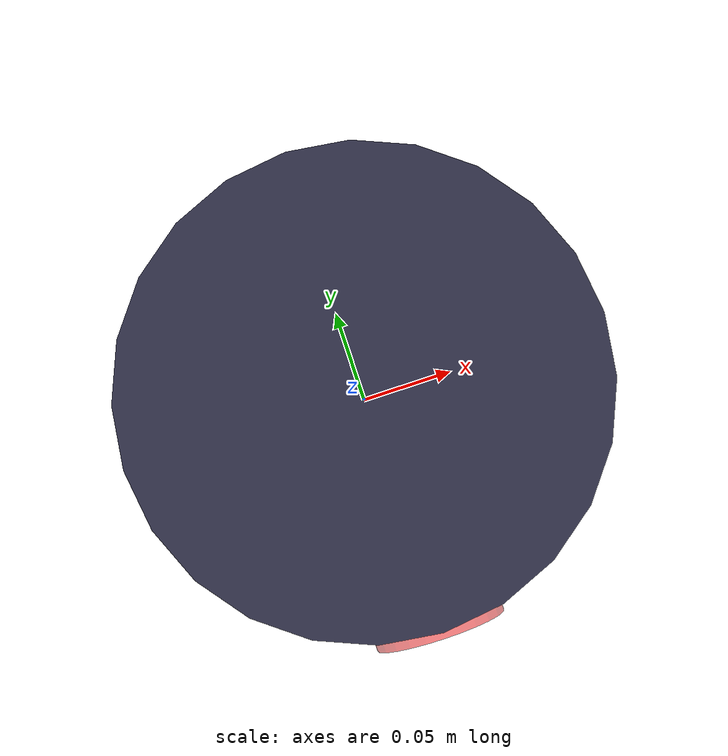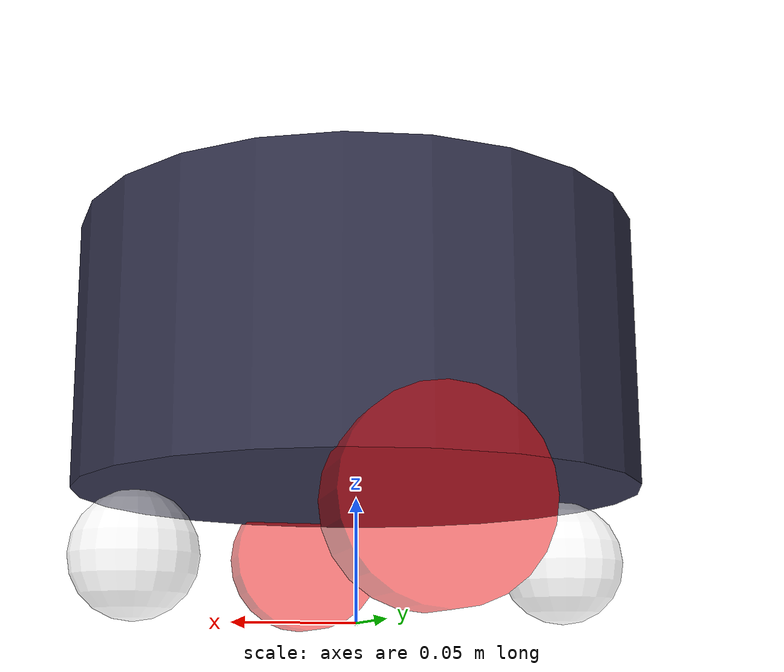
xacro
<robot name="my_base" xmlns:xacro="http://www.ros.org/wiki/xacro">
    <!-- variable constant -->
    <xacro:property name="PI" value="3.141" />

    <!-- macro:black -->
    <material name="black">
        <color rgba="0.0 0.0 0.0 1.0" />
    </material>

    <!-- car chassis attributes -->
    <xacro:property name="base_footprint_radius" value="0.001" />
    <xacro:property name="base_link_radius" value="0.1135" />
    <xacro:property name="base_link_length" value="0.106" />
    <xacro:property name="earth_space" value="0.051" />

    <!-- set a origin-->
    <link name="base_footprint">
        <visual>
            <geometry>
                <sphere radius="${base_footprint_radius}" />
            </geometry>
        </visual>
    </link>

    <!-- chassis -->
    <link name="base_link">
        <visual>
            <geometry>
                <cylinder radius="${base_link_radius}" length="${base_link_length}" />
            </geometry>
            <origin xyz="0 0 0" rpy="0 0 0" />
            <material name="gray">
                <color rgba="0.2 0.2 0.3 1" />
            </material>
        </visual>
    </link>

    <joint name="base_link2base_footprint" type="fixed">
        <parent link="base_footprint" />
        <child link="base_link" />
        <origin xyz="0 0 ${earth_space + base_link_length / 2}" />
    </joint>

    <!-- driving wheel -->
    <xacro:property name="wheel_radius" value="0.035" />
    <xacro:property name="wheel_length" value="0.03" />
     <!-- achieve  -->
    <xacro:macro name="add_wheels" params="name flag">
        <link name="${name}_wheel">
            <visual>
                <geometry>
                    <cylinder radius="${wheel_radius}" length="${wheel_length}" />
                </geometry>
                <origin xyz="0.0 0.0 0.0" rpy="${PI/2} 0.0 0.0" />
                <material name="red">
                    <color rgba="1.0 0.0 0.0 0.5" />
                </material>
            </visual>
        </link>

        <joint name="${name}_wheel2base_link" type="continuous">
            <parent link="base_link" />
            <child link="${name}_wheel" />
            <origin xyz="0 ${flag * base_link_radius} ${-(earth_space + base_link_length / 2 - wheel_radius)}" />
            <axis xyz="0 1 0" />
        </joint>
    </xacro:macro>

    <xacro:add_wheels name="left" flag="1" />
    <xacro:add_wheels name="right" flag="-1" />

    <!-- supporting wheel -->
    <xacro:property name="support_wheel_radius" value="0.0255" />

    <xacro:macro name="add_support_wheel" params="name flag">
        <link name="${name}_wheel">
            <visual>
                <geometry>
                    <sphere radius="${support_wheel_radius}" />
                </geometry>
                <origin xyz="0 0 0" rpy="0 0 0" />
                <material name="white">
                    <color rgba="1.0 1.0 1.0 0.5" />
                </material>
            </visual>
        </link>

        <joint name="${name}_wheel2base_link" type="continuous">
            <parent link="base_link" />
            <child link="${name}_wheel" />
            <origin xyz="${flag  * (base_link_radius - support_wheel_radius)} 0 ${-(base_link_length / 2 + earth_space / 2)}" />
            <axis xyz="1 1 1" />
        </joint>
    </xacro:macro>

    <xacro:add_support_wheel name="front" flag="1" />
    <xacro:add_support_wheel name="back" flag="-1" />

</robot>
